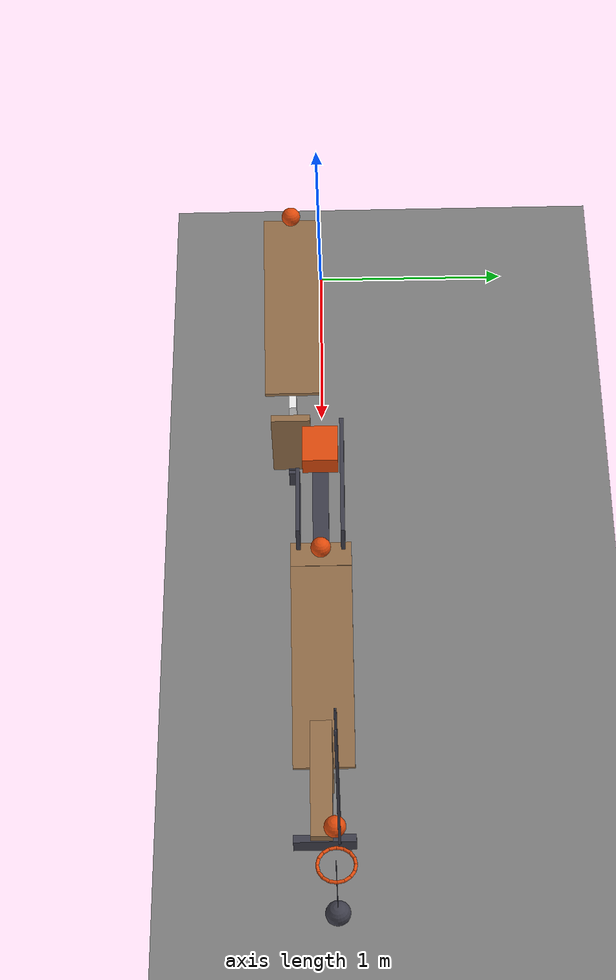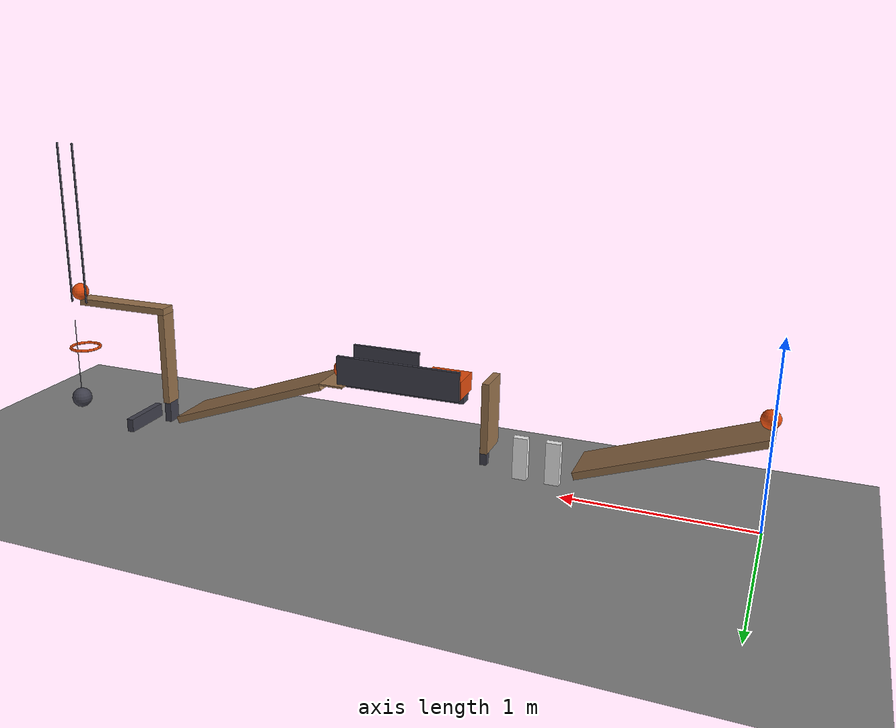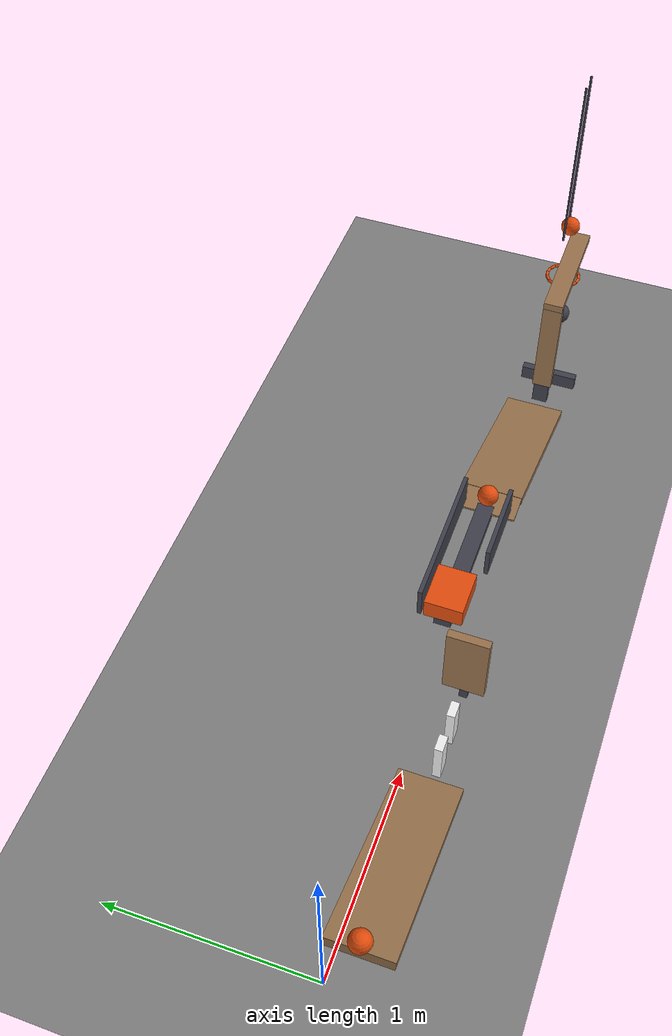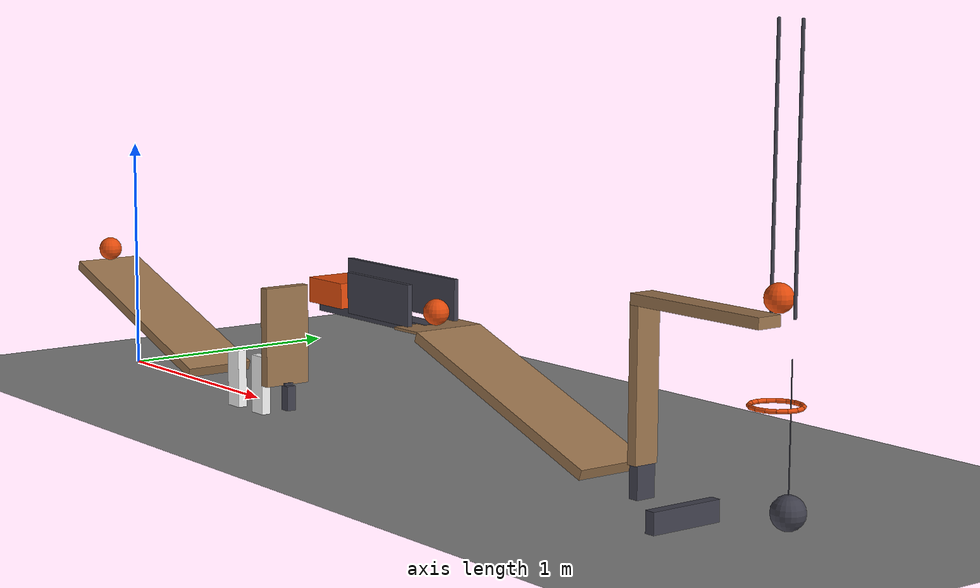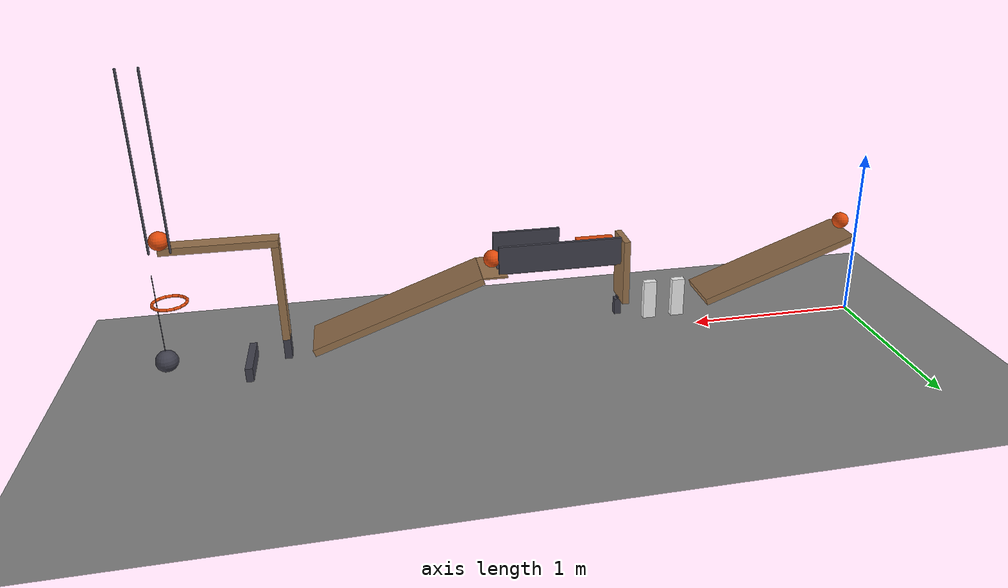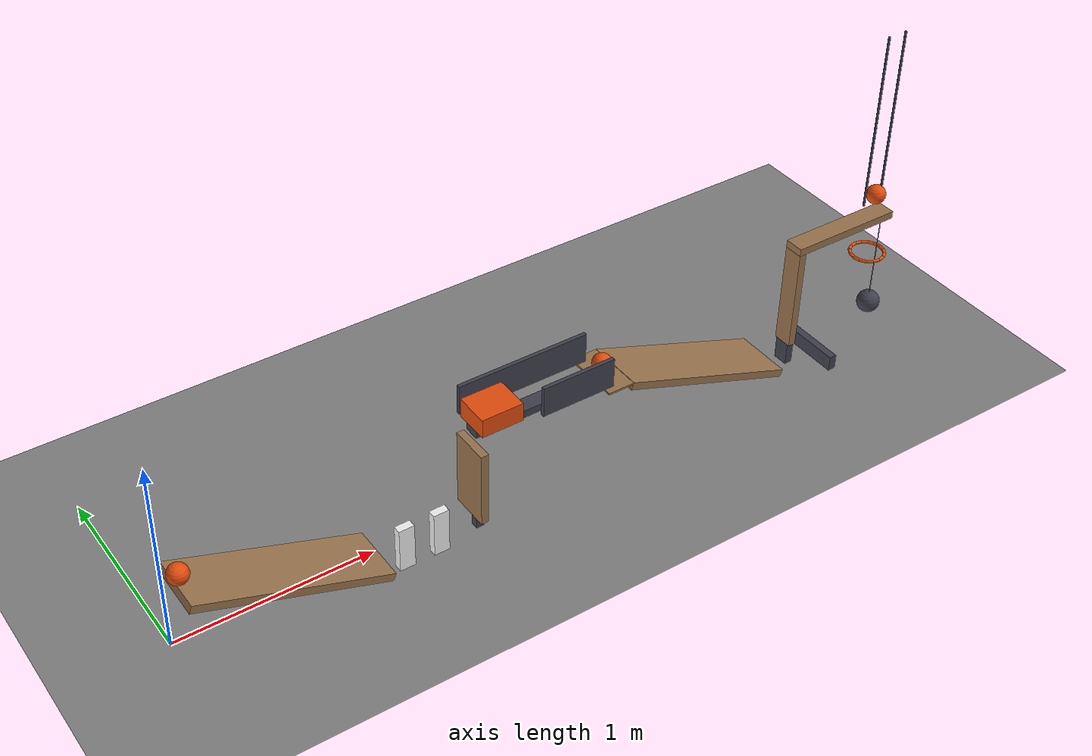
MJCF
<mujoco model="gravity_chain_revision">
  <compiler angle="radian"/>
  <option timestep="0.002"/>
  <worldbody>
    <geom name="floor" type="plane" size="10 10 0.1" friction="0.7 0 0.002"/>
    <body name="ramp1">
      <geom name="ramp1" type="box" pos="0.469846 -0.15 0.302216" size="0.5 0.15 0.02" euler="0 0.349066 0" friction="0.7 0 0.002" solref="0.01 1" rgba="0.6 0.45 0.3 1"/>
    </body>
    <body name="ball1" pos="0.0239414 -0.15 0.539005">
      <freejoint/>
      <geom name="ball1" type="sphere" pos="0 0 0" size="0.05" mass="0.2" condim="6" friction="0.7 0 0.002" solref="0.01 1" rgba="0.9 0.3 0.05 1"/>
    </body>
    <body name="domino1" pos="1.07969 -0.15 0.12">
      <freejoint/>
      <geom name="domino1" type="box" pos="0 0 0" size="0.04 0.02 0.12" mass="0.25" friction="0.7 0 0.002" solref="0.01 1" rgba="0.95 0.95 0.95 1"/>
    </body>
    <body name="domino2" pos="1.25969 -0.15 0.12">
      <freejoint/>
      <geom name="domino2" type="box" pos="0 0 0" size="0.04 0.02 0.12" mass="0.25" friction="0.7 0 0.002" solref="0.01 1" rgba="0.95 0.95 0.95 1"/>
    </body>
    <body name="flap1" pos="1.43969 -0.15 0.55">
      <joint name="flap_hinge" type="hinge" pos="0 0 0" axis="0 1 0" limited="true" range="-1.13446 0.0872665" stiffness="12" springref="-1.13446" damping="0.04"/>
      <geom name="flap1" type="box" pos="0 0 -0.2" size="0.02 0.1 0.2" mass="0.3" friction="0.7 0 0.002" solref="0.01 1" rgba="0.6 0.45 0.3 1"/>
    </body>
    <body name="flap catch" pos="1.46569 -0.15 0.148">
      <joint name="flap_catch_hinge" type="hinge" pos="0 0 0" axis="0 1 0" limited="true" range="-1.5708 0" damping="0.04"/>
      <geom name="flap catch" type="box" pos="0 0 -0.05" size="0.02 0.02 0.05" mass="0.025" friction="0.7 0 0.002" solref="0.01 1" rgba="0.25 0.25 0.3 1"/>
      <geom name="flap catch finger" type="box" pos="-0.002 0 0.006" size="0.004 0.02 0.004" mass="0.005" friction="0.7 0 0.002" solref="0.01 1" rgba="0.25 0.25 0.3 1"/>
    </body>
    <body name="cart track">
      <geom name="cart track" type="box" pos="1.87969 0 0.47402" size="0.35 0.04 0.02" friction="0.7 0 0.002" solref="0.01 1" rgba="0.25 0.25 0.3 1"/>
    </body>
    <body name="cart left guide">
      <geom name="cart left guide" type="box" pos="1.87969 0.11 0.57402" size="0.35 0.01 0.08" friction="0.7 0 0.002" solref="0.01 1" rgba="0.25 0.25 0.3 1"/>
    </body>
    <body name="cart right guide">
      <geom name="cart right guide" type="box" pos="2.03469 -0.11 0.57402" size="0.195 0.01 0.08" friction="0.7 0 0.002" solref="0.01 1" rgba="0.25 0.25 0.3 1"/>
    </body>
    <body name="cart1" pos="1.63969 0 0.54402">
      <freejoint/>
      <geom name="cart1" type="box" pos="0 0 0" size="0.11 0.09 0.05" mass="0.5" friction="0.7 0 0.002" solref="0.01 1" rgba="0.9 0.3 0.05 1"/>
    </body>
    <body name="ramp2">
      <geom name="ramp2" type="box" pos="2.78954 0 0.302216" size="0.5 0.15 0.02" euler="0 0.349066 0" friction="0.7 0 0.002" solref="0.01 1" rgba="0.6 0.45 0.3 1"/>
    </body>
    <body name="ball2 perch">
      <geom name="ball2 perch" type="box" pos="2.25469 0 0.48702" size="0.07 0.15 0.005" friction="0.7 0 0.002" solref="0.01 1" rgba="0.6 0.45 0.3 1"/>
    </body>
    <body name="ball2" pos="2.24969 0 0.54202">
      <freejoint/>
      <geom name="ball2" type="sphere" pos="0 0 0" size="0.05" mass="0.2" condim="6" friction="0.7 0 0.002" solref="0.01 1" rgba="0.9 0.3 0.05 1"/>
    </body>
    <body name="lever1" pos="3.68623 0 0.75">
      <joint name="lever_hinge" type="hinge" pos="0 0 0" axis="0 1 0" limited="true" range="-0.785398 0" stiffness="4" springref="-0.785398" damping="0.04"/>
      <geom name="lever1" type="box" pos="0 0 0" size="0.3 0.05 0.02" mass="0.495" friction="0.7 0 0.002" solref="0.01 1" rgba="0.6 0.45 0.3 1"/>
      <geom name="lever striker" type="box" pos="-0.28 0 -0.295" size="0.02 0.05 0.275" mass="0.005" friction="0.7 0 0.002" solref="0.01 1" rgba="0.6 0.45 0.3 1"/>
    </body>
    <body name="lever catch" pos="3.42123 0 0.06">
      <joint name="lever_catch_hinge" type="hinge" pos="0 0 0" axis="0 1 0" limited="true" range="0 1.5708" damping="0.04"/>
      <geom name="lever catch" type="box" pos="-0.015 0 0.06" size="0.02 0.04 0.06" mass="0.015" friction="0.7 0 0.002" solref="0.01 1" rgba="0.25 0.25 0.3 1"/>
    </body>
    <body name="ball2 arrest wall">
      <geom name="ball2 arrest wall" type="box" pos="3.61 0 0.04" size="0.02 0.15 0.04" friction="0.7 0 0.002" solref="0.01 1" rgba="0.25 0.25 0.3 1"/>
    </body>
    <body name="launch left guide">
      <geom name="launch left guide" type="capsule" size="0.006" fromto="3.91392 0.08 0.76 3.91392 0.08 1.7" friction="0.7 0 0.002" solref="0.01 1" rgba="0.25 0.25 0.3 1"/>
    </body>
    <body name="launch right guide">
      <geom name="launch right guide" type="capsule" size="0.006" fromto="4.01853 0.08 0.76 4.01853 0.08 1.7" friction="0.7 0 0.002" solref="0.01 1" rgba="0.25 0.25 0.3 1"/>
    </body>
    <body name="ball3" pos="3.96623 0.06 0.81899">
      <freejoint/>
      <geom name="ball3" type="sphere" pos="0 0 0" size="0.05" mass="0.2" condim="6" friction="0.7 0 0.002" solref="0.01 1" rgba="0.9 0.3 0.05 1"/>
    </body>
    <body name="ring1">
      <geom name="ring1_00" type="capsule" size="0.008" fromto="4.05423 0.06 0.46899 4.04753 0.0936761 0.46899" friction="0.7 0 0.002" solref="0.01 1" rgba="0.9 0.3 0.05 1"/>
      <geom name="ring1_01" type="capsule" size="0.008" fromto="4.04753 0.0936761 0.46899 4.02845 0.122225 0.46899" friction="0.7 0 0.002" solref="0.01 1" rgba="0.9 0.3 0.05 1"/>
      <geom name="ring1_02" type="capsule" size="0.008" fromto="4.02845 0.122225 0.46899 3.9999 0.141301 0.46899" friction="0.7 0 0.002" solref="0.01 1" rgba="0.9 0.3 0.05 1"/>
      <geom name="ring1_03" type="capsule" size="0.008" fromto="3.9999 0.141301 0.46899 3.96623 0.148 0.46899" friction="0.7 0 0.002" solref="0.01 1" rgba="0.9 0.3 0.05 1"/>
      <geom name="ring1_04" type="capsule" size="0.008" fromto="3.96623 0.148 0.46899 3.93255 0.141301 0.46899" friction="0.7 0 0.002" solref="0.01 1" rgba="0.9 0.3 0.05 1"/>
      <geom name="ring1_05" type="capsule" size="0.008" fromto="3.93255 0.141301 0.46899 3.904 0.122225 0.46899" friction="0.7 0 0.002" solref="0.01 1" rgba="0.9 0.3 0.05 1"/>
      <geom name="ring1_06" type="capsule" size="0.008" fromto="3.904 0.122225 0.46899 3.88492 0.0936761 0.46899" friction="0.7 0 0.002" solref="0.01 1" rgba="0.9 0.3 0.05 1"/>
      <geom name="ring1_07" type="capsule" size="0.008" fromto="3.88492 0.0936761 0.46899 3.87823 0.06 0.46899" friction="0.7 0 0.002" solref="0.01 1" rgba="0.9 0.3 0.05 1"/>
      <geom name="ring1_08" type="capsule" size="0.008" fromto="3.87823 0.06 0.46899 3.88492 0.0263239 0.46899" friction="0.7 0 0.002" solref="0.01 1" rgba="0.9 0.3 0.05 1"/>
      <geom name="ring1_09" type="capsule" size="0.008" fromto="3.88492 0.0263239 0.46899 3.904 -0.0022254 0.46899" friction="0.7 0 0.002" solref="0.01 1" rgba="0.9 0.3 0.05 1"/>
      <geom name="ring1_10" type="capsule" size="0.008" fromto="3.904 -0.0022254 0.46899 3.93255 -0.0213014 0.46899" friction="0.7 0 0.002" solref="0.01 1" rgba="0.9 0.3 0.05 1"/>
      <geom name="ring1_11" type="capsule" size="0.008" fromto="3.93255 -0.0213014 0.46899 3.96623 -0.028 0.46899" friction="0.7 0 0.002" solref="0.01 1" rgba="0.9 0.3 0.05 1"/>
      <geom name="ring1_12" type="capsule" size="0.008" fromto="3.96623 -0.028 0.46899 3.9999 -0.0213014 0.46899" friction="0.7 0 0.002" solref="0.01 1" rgba="0.9 0.3 0.05 1"/>
      <geom name="ring1_13" type="capsule" size="0.008" fromto="3.9999 -0.0213014 0.46899 4.02845 -0.0022254 0.46899" friction="0.7 0 0.002" solref="0.01 1" rgba="0.9 0.3 0.05 1"/>
      <geom name="ring1_14" type="capsule" size="0.008" fromto="4.02845 -0.0022254 0.46899 4.04753 0.0263239 0.46899" friction="0.7 0 0.002" solref="0.01 1" rgba="0.9 0.3 0.05 1"/>
      <geom name="ring1_15" type="capsule" size="0.008" fromto="4.04753 0.0263239 0.46899 4.05423 0.06 0.46899" friction="0.7 0 0.002" solref="0.01 1" rgba="0.9 0.3 0.05 1"/>
    </body>
    <body name="pendulum1" pos="4.03123 0.06 0.630249">
      <joint name="pendulum_hinge" type="hinge" pos="0 0 0" axis="0 1 0" limited="true" range="-1.5708 1.5708" damping="0.04"/>
      <geom name="pendulum1_bob" type="sphere" pos="0 0 -0.5" size="0.06" mass="0.34" friction="0.7 0 0.002" solref="0.01 1" rgba="0.25 0.25 0.3 1"/>
      <geom name="pendulum1_rod" type="capsule" size="0.002" fromto="0 0 0 0 0 -0.44" mass="0.01" friction="0.7 0 0.002" solref="0.01 1" rgba="0.25 0.25 0.3 1"/>
    </body>
  </worldbody>
  <keyframe>
    <key name="start" qpos="0.0239414 -0.15 0.539005 1 0 0 0 1.07969 -0.15 0.12 1 0 0 0 1.25969 -0.15 0.12 1 0 0 0 0 0 1.63969 0 0.54402 1 0 0 0 2.24969 0 0.54202 1 0 0 0 0 0 3.96623 0.06 0.81899 1 0 0 0 0" qvel="0 0 0 0 0 0 0 0 0 0 0 0 0 0 0 0 0 0 0 0 0 0 0 0 0 0 0 0 0 0 0 0 0 0 0 0 0 0 0 0 0"/>
  </keyframe>
</mujoco>
